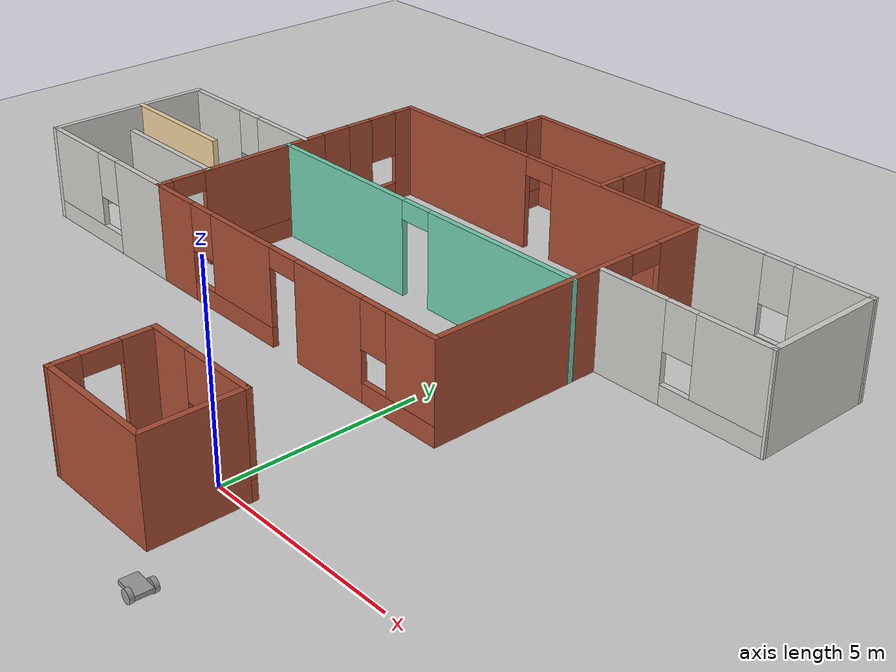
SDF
<sdf version="1.7">
 <world name="default">
  <plugin name="welcome_msg" filename="libwelcome.so"/>
  <light name="sun" type="directional">
   <pose>0 0 10 0 -0 0</pose>
   <diffuse>0.8 0.8 0.8 1</diffuse>
   <specular>0.2 0.2 0.2 1</specular>
   <attenuation>
    <range>1000</range>
    <constant>0.9</constant>
    <linear>0.01</linear>
    <quadratic>0.001</quadratic>
   </attenuation>
   <direction>-0.5 0.1 -0.9</direction>
   <spot><inner_angle>0</inner_angle><outer_angle>0</outer_angle><falloff>0</falloff></spot>
  </light>
  <model name="ground_plane">
   <static>1</static>
   <link name="link">
    <collision name="collision">
     <geometry><plane><normal>0 0 1</normal><size>100 100</size></plane></geometry>
     <surface>
      <contact><collide_bitmask>65535</collide_bitmask></contact>
      <friction><ode><mu>100</mu><mu2>50</mu2></ode></friction>
     </surface>
    </collision>
    <visual name="visual">
     <cast_shadows>0</cast_shadows>
     <geometry><plane><normal>0 0 1</normal><size>100 100</size></plane></geometry>
     <material>
      <script><uri>file://media/materials/scripts/gazebo.material</uri><name>Gazebo/Grey</name></script>
     </material>
    </visual>
   </link>
  </model>
  <gravity>0 0 -9.8</gravity>
  <magnetic_field>6e-06 2.3e-05 -4.2e-05</magnetic_field>
  <atmosphere type="adiabatic"/>
  <physics type="ode">
   <max_step_size>0.001</max_step_size>
   <real_time_factor>1</real_time_factor>
   <real_time_update_rate>1000</real_time_update_rate>
  </physics>
  <scene><ambient>0.4 0.4 0.4 1</ambient><background>0.7 0.7 0.7 1</background><shadows>1</shadows></scene>
  <spherical_coordinates>
   <surface_model>EARTH_WGS84</surface_model>
   <latitude_deg>0</latitude_deg>
   <longitude_deg>0</longitude_deg>
   <elevation>0</elevation>
   <heading_deg>0</heading_deg>
  </spherical_coordinates>
  <model name="test">
   <pose>-0.772529 -0.237938 0 0 -0 0</pose>
   <link name="Wall_1">
    <pose>0 0.4975 0 0 -0 0</pose>
    <visual name="Wall_1_Visual_0">
     <pose>-1.0175 0 1.25 0 -0 0</pose>
     <geometry><box><size>1.215 0.15 2.5</size></box></geometry>
     <material>
      <script><uri>file://media/materials/scripts/gazebo.material</uri><name>Gazebo/Bricks</name></script>
      <ambient>1 1 1 1</ambient>
     </material>
     <meta><layer>0</layer></meta>
    </visual>
    <collision name="Wall_1_Collision_0">
     <geometry><box><size>1.215 0.15 2.5</size></box></geometry>
     <pose>-1.0175 0 1.25 0 -0 0</pose>
    </collision>
    <visual name="Wall_1_Visual_1">
     <pose>0.6075 0 0.25 0 -0 0</pose>
     <geometry><box><size>2.035 0.15 0.5</size></box></geometry>
     <material>
      <script><uri>file://media/materials/scripts/gazebo.material</uri><name>Gazebo/Bricks</name></script>
      <ambient>1 1 1 1</ambient>
     </material>
     <meta><layer>0</layer></meta>
    </visual>
    <collision name="Wall_1_Collision_1">
     <geometry><box><size>2.035 0.15 0.5</size></box></geometry>
     <pose>0.6075 0 0.25 0 -0 0</pose>
    </collision>
    <visual name="Wall_1_Visual_2">
     <pose>1.0075 0 1.5 0 -0 0</pose>
     <geometry><box><size>1.235 0.15 2</size></box></geometry>
     <material>
      <script><uri>file://media/materials/scripts/gazebo.material</uri><name>Gazebo/Bricks</name></script>
      <ambient>1 1 1 1</ambient>
     </material>
     <meta><layer>0</layer></meta>
    </visual>
    <collision name="Wall_1_Collision_2">
     <geometry><box><size>1.235 0.15 2</size></box></geometry>
     <pose>1.0075 0 1.5 0 -0 0</pose>
    </collision>
    <visual name="Wall_1_Visual_3">
     <pose>-0.01 0 1.9 0 -0 0</pose>
     <geometry><box><size>0.8 0.15 1.2</size></box></geometry>
     <material>
      <script><uri>file://media/materials/scripts/gazebo.material</uri><name>Gazebo/Bricks</name></script>
      <ambient>1 1 1 1</ambient>
     </material>
     <meta><layer>0</layer></meta>
    </visual>
    <collision name="Wall_1_Collision_3">
     <geometry><box><size>0.8 0.15 1.2</size></box></geometry>
     <pose>-0.01 0 1.9 0 -0 0</pose>
    </collision>
   </link>
   <link name="Wall_3">
    <pose>-1.55 -0.6775 0 0 -0 -1.5708</pose>
    <visual name="Wall_3_Visual_0">
     <pose>-0.8125 0 1.25 0 -0 0</pose>
     <geometry><box><size>0.875 0.15 2.5</size></box></geometry>
     <material>
      <script><uri>file://media/materials/scripts/gazebo.material</uri><name>Gazebo/Bricks</name></script>
      <ambient>1 1 1 1</ambient>
     </material>
     <meta><layer>0</layer></meta>
    </visual>
    <collision name="Wall_3_Collision_0">
     <geometry><box><size>0.875 0.15 2.5</size></box></geometry>
     <pose>-0.8125 0 1.25 0 -0 0</pose>
    </collision>
    <visual name="Wall_3_Visual_1">
     <pose>0.8875 0 1.25 0 -0 0</pose>
     <geometry><box><size>0.725 0.15 2.5</size></box></geometry>
     <material>
      <script><uri>file://media/materials/scripts/gazebo.material</uri><name>Gazebo/Bricks</name></script>
      <ambient>1 1 1 1</ambient>
     </material>
     <meta><layer>0</layer></meta>
    </visual>
    <collision name="Wall_3_Collision_1">
     <geometry><box><size>0.725 0.15 2.5</size></box></geometry>
     <pose>0.8875 0 1.25 0 -0 0</pose>
    </collision>
    <visual name="Wall_3_Visual_2">
     <pose>0.075 0 2.25 0 -0 0</pose>
     <geometry><box><size>0.9 0.15 0.5</size></box></geometry>
     <material>
      <script><uri>file://media/materials/scripts/gazebo.material</uri><name>Gazebo/Bricks</name></script>
      <ambient>1 1 1 1</ambient>
     </material>
     <meta><layer>0</layer></meta>
    </visual>
    <collision name="Wall_3_Collision_2">
     <geometry><box><size>0.9 0.15 0.5</size></box></geometry>
     <pose>0.075 0 2.25 0 -0 0</pose>
    </collision>
   </link>
   <link name="Wall_4">
    <collision name="Wall_4_Collision">
     <geometry><box><size>3.25 0.15 2.5</size></box></geometry>
     <pose>0 0 1.25 0 -0 0</pose>
    </collision>
    <visual name="Wall_4_Visual">
     <pose>0 0 1.25 0 -0 0</pose>
     <geometry><box><size>3.25 0.15 2.5</size></box></geometry>
     <material>
      <script><uri>file://media/materials/scripts/gazebo.material</uri><name>Gazebo/Bricks</name></script>
      <ambient>1 1 1 1</ambient>
     </material>
     <meta><layer>0</layer></meta>
    </visual>
    <pose>0 -1.8525 0 0 -0 0</pose>
   </link>
   <link name="Wall_5">
    <collision name="Wall_5_Collision">
     <geometry><box><size>2.5 0.15 2.5</size></box></geometry>
     <pose>0 0 1.25 0 -0 0</pose>
    </collision>
    <visual name="Wall_5_Visual">
     <pose>0 0 1.25 0 -0 0</pose>
     <geometry><box><size>2.5 0.15 2.5</size></box></geometry>
     <material>
      <script><uri>file://media/materials/scripts/gazebo.material</uri><name>Gazebo/Bricks</name></script>
      <ambient>1 1 1 1</ambient>
     </material>
     <meta><layer>0</layer></meta>
    </visual>
    <pose>1.55 -0.6775 0 0 -0 1.5708</pose>
   </link>
   <static>1</static>
  </model>
  <model name="robot">
   <link name="body">
    <pose>0 0 0.15 0 -0 0</pose>
    <inertial>
     <mass>1</mass>
     <inertia>
      <ixx>0.166667</ixx>
      <ixy>0</ixy>
      <ixz>0</ixz>
      <iyy>0.166667</iyy>
      <iyz>0</iyz>
      <izz>0.166667</izz>
     </inertia>
    </inertial>
    <visual name="visual">
     <geometry><box><size>0.6 0.4 0.1</size></box></geometry>
     <material>
      <lighting>1</lighting>
      <script><uri>file://media/materials/scripts/gazebo.material</uri><name>Gazebo/Grey</name></script>
      <shader type="pixel"><normal_map>__default__</normal_map></shader>
      <ambient>0.3 0.3 0.3 1</ambient>
      <diffuse>0.7 0.7 0.7 1</diffuse>
      <specular>0.01 0.01 0.01 1</specular>
      <emissive>0 0 0 1</emissive>
     </material>
    </visual>
    <collision name="collision">
     <geometry><box><size>0.6 0.4 0.1</size></box></geometry>
     <surface>
      <friction>
       <ode><mu>1</mu><mu2>1</mu2><fdir1>0 0 0</fdir1><slip1>0</slip1><slip2>0</slip2></ode>
       <torsional>
        <coefficient>1</coefficient>
        <patch_radius>0</patch_radius>
        <surface_radius>0</surface_radius>
        <use_patch_radius>1</use_patch_radius>
        <ode><slip>0</slip></ode>
       </torsional>
      </friction>
      <bounce><restitution_coefficient>0</restitution_coefficient><threshold>1e+06</threshold></bounce>
      <contact>
       <collide_without_contact>0</collide_without_contact>
       <collide_without_contact_bitmask>1</collide_without_contact_bitmask>
       <collide_bitmask>1</collide_bitmask>
       <ode>
        <soft_cfm>0</soft_cfm>
        <soft_erp>0.2</soft_erp>
        <kp>1e+13</kp>
        <kd>1</kd>
        <max_vel>0.01</max_vel>
        <min_depth>0</min_depth>
       </ode>
       <bullet>
        <split_impulse>1</split_impulse>
        <split_impulse_penetration_threshold>-0.01</split_impulse_penetration_threshold>
        <soft_cfm>0</soft_cfm>
        <soft_erp>0.2</soft_erp>
        <kp>1e+13</kp>
        <kd>1</kd>
       </bullet>
      </contact>
     </surface>
    </collision>
   </link>
   <link name="left_wheel">
    <pose>0.15 -0.25 0.15 1.5707 -0 0</pose>
    <inertial>
     <mass>1</mass>
     <inertia><ixx>0.145833</ixx><ixy>0</ixy><ixz>0</ixz><iyy>0.145833</iyy><iyz>0</iyz><izz>0.125</izz></inertia>
    </inertial>
    <visual name="visual">
     <geometry><cylinder><radius>0.15</radius><length>0.1</length></cylinder></geometry>
     <material>
      <lighting>1</lighting>
      <script><uri>file://media/materials/scripts/gazebo.material</uri><name>Gazebo/Grey</name></script>
      <shader type="pixel"><normal_map>__default__</normal_map></shader>
      <ambient>0.3 0.3 0.3 1</ambient>
      <diffuse>0.7 0.7 0.7 1</diffuse>
      <specular>0.01 0.01 0.01 1</specular>
      <emissive>0 0 0 1</emissive>
     </material>
    </visual>
    <collision name="collision">
     <geometry><cylinder><radius>0.15</radius><length>0.1</length></cylinder></geometry>
     <surface>
      <friction>
       <ode><mu>1</mu><mu2>1</mu2><fdir1>0 0 0</fdir1><slip1>0</slip1><slip2>0</slip2></ode>
       <torsional>
        <coefficient>1</coefficient>
        <patch_radius>0</patch_radius>
        <surface_radius>0</surface_radius>
        <use_patch_radius>1</use_patch_radius>
        <ode><slip>0</slip></ode>
       </torsional>
      </friction>
      <bounce><restitution_coefficient>0</restitution_coefficient><threshold>1e+06</threshold></bounce>
      <contact>
       <collide_without_contact>0</collide_without_contact>
       <collide_without_contact_bitmask>1</collide_without_contact_bitmask>
       <collide_bitmask>1</collide_bitmask>
       <ode>
        <soft_cfm>0</soft_cfm>
        <soft_erp>0.2</soft_erp>
        <kp>1e+13</kp>
        <kd>1</kd>
        <max_vel>0.01</max_vel>
        <min_depth>0</min_depth>
       </ode>
       <bullet>
        <split_impulse>1</split_impulse>
        <split_impulse_penetration_threshold>-0.01</split_impulse_penetration_threshold>
        <soft_cfm>0</soft_cfm>
        <soft_erp>0.2</soft_erp>
        <kp>1e+13</kp>
        <kd>1</kd>
       </bullet>
      </contact>
     </surface>
    </collision>
   </link>
   <link name="right_wheel">
    <pose>0.15 0.25 0.15 1.5707 -0 0</pose>
    <inertial>
     <mass>1</mass>
     <inertia><ixx>0.145833</ixx><ixy>0</ixy><ixz>0</ixz><iyy>0.145833</iyy><iyz>0</iyz><izz>0.125</izz></inertia>
    </inertial>
    <visual name="visual">
     <geometry><cylinder><radius>0.15</radius><length>0.1</length></cylinder></geometry>
     <material>
      <lighting>1</lighting>
      <script><uri>file://media/materials/scripts/gazebo.material</uri><name>Gazebo/Grey</name></script>
      <shader type="pixel"><normal_map>__default__</normal_map></shader>
      <ambient>0.3 0.3 0.3 1</ambient>
      <diffuse>0.7 0.7 0.7 1</diffuse>
      <specular>0.01 0.01 0.01 1</specular>
      <emissive>0 0 0 1</emissive>
     </material>
    </visual>
    <collision name="collision">
     <geometry><cylinder><radius>0.15</radius><length>0.1</length></cylinder></geometry>
     <surface>
      <friction>
       <ode><mu>1</mu><mu2>1</mu2><fdir1>0 0 0</fdir1><slip1>0</slip1><slip2>0</slip2></ode>
       <torsional>
        <coefficient>1</coefficient>
        <patch_radius>0</patch_radius>
        <surface_radius>0</surface_radius>
        <use_patch_radius>1</use_patch_radius>
        <ode><slip>0</slip></ode>
       </torsional>
      </friction>
      <bounce><restitution_coefficient>0</restitution_coefficient><threshold>1e+06</threshold></bounce>
      <contact>
       <collide_without_contact>0</collide_without_contact>
       <collide_without_contact_bitmask>1</collide_without_contact_bitmask>
       <collide_bitmask>1</collide_bitmask>
       <ode>
        <soft_cfm>0</soft_cfm>
        <soft_erp>0.2</soft_erp>
        <kp>1e+13</kp>
        <kd>1</kd>
        <max_vel>0.01</max_vel>
        <min_depth>0</min_depth>
       </ode>
       <bullet>
        <split_impulse>1</split_impulse>
        <split_impulse_penetration_threshold>-0.01</split_impulse_penetration_threshold>
        <soft_cfm>0</soft_cfm>
        <soft_erp>0.2</soft_erp>
        <kp>1e+13</kp>
        <kd>1</kd>
       </bullet>
      </contact>
     </surface>
    </collision>
   </link>
   <link name="caster_wheel">
    <pose>-0.25 0 0.08 0 -0 0</pose>
    <inertial>
     <mass>1</mass>
     <inertia><ixx>0.1</ixx><ixy>0</ixy><ixz>0</ixz><iyy>0.1</iyy><iyz>0</iyz><izz>0.1</izz></inertia>
    </inertial>
    <visual name="visual">
     <geometry><sphere><radius>0.08</radius></sphere></geometry>
     <material>
      <lighting>1</lighting>
      <script><uri>file://media/materials/scripts/gazebo.material</uri><name>Gazebo/Grey</name></script>
      <shader type="pixel"><normal_map>__default__</normal_map></shader>
      <ambient>0.3 0.3 0.3 1</ambient>
      <diffuse>0.7 0.7 0.7 1</diffuse>
      <specular>0.01 0.01 0.01 1</specular>
      <emissive>0 0 0 1</emissive>
     </material>
    </visual>
    <collision name="collision">
     <geometry><sphere><radius>0.08</radius></sphere></geometry>
     <surface>
      <friction>
       <ode><mu>1</mu><mu2>1</mu2><fdir1>0 0 0</fdir1><slip1>0</slip1><slip2>0</slip2></ode>
       <torsional>
        <coefficient>1</coefficient>
        <patch_radius>0</patch_radius>
        <surface_radius>0</surface_radius>
        <use_patch_radius>1</use_patch_radius>
        <ode><slip>0</slip></ode>
       </torsional>
      </friction>
      <bounce><restitution_coefficient>0</restitution_coefficient><threshold>1e+06</threshold></bounce>
      <contact>
       <collide_without_contact>0</collide_without_contact>
       <collide_without_contact_bitmask>1</collide_without_contact_bitmask>
       <collide_bitmask>1</collide_bitmask>
       <ode>
        <soft_cfm>0</soft_cfm>
        <soft_erp>0.2</soft_erp>
        <kp>1e+13</kp>
        <kd>1</kd>
        <max_vel>0.01</max_vel>
        <min_depth>0</min_depth>
       </ode>
       <bullet>
        <split_impulse>1</split_impulse>
        <split_impulse_penetration_threshold>-0.01</split_impulse_penetration_threshold>
        <soft_cfm>0</soft_cfm>
        <soft_erp>0.2</soft_erp>
        <kp>1e+13</kp>
        <kd>1</kd>
       </bullet>
      </contact>
     </surface>
    </collision>
   </link>
   <joint name="BODY_RW_JOINT" type="revolute">
    <parent>body</parent>
    <child>right_wheel</child>
    <axis>
     <xyz>1 0 0</xyz>
     <limit>
      <lower>-1.79769e+308</lower>
      <upper>1.79769e+308</upper>
      <effort>-1</effort>
      <velocity>-1</velocity>
     </limit>
     <dynamics>
      <spring_reference>0</spring_reference>
      <spring_stiffness>0</spring_stiffness>
      <damping>0</damping>
     </dynamics>
    </axis>
    <physics>
     <ode><limit><cfm>0</cfm><erp>0.2</erp></limit><suspension><cfm>0</cfm><erp>0.2</erp></suspension></ode>
    </physics>
   </joint>
   <joint name="BODY_LW_JOINT" type="revolute">
    <parent>body</parent>
    <child>left_wheel</child>
    <axis>
     <xyz>1 0 0</xyz>
     <limit>
      <lower>-1.79769e+308</lower>
      <upper>1.79769e+308</upper>
      <effort>-1</effort>
      <velocity>-1</velocity>
     </limit>
     <dynamics>
      <spring_reference>0</spring_reference>
      <spring_stiffness>0</spring_stiffness>
      <damping>0</damping>
     </dynamics>
    </axis>
    <physics>
     <ode><limit><cfm>0</cfm><erp>0.2</erp></limit><suspension><cfm>0</cfm><erp>0.2</erp></suspension></ode>
    </physics>
   </joint>
   <joint name="BODY_CW_JOINT" type="ball">
    <parent>body</parent>
    <child>caster_wheel</child>
    <physics>
     <ode><limit><cfm>0</cfm><erp>0.2</erp></limit><suspension><cfm>0</cfm><erp>0.2</erp></suspension></ode>
    </physics>
   </joint>
   <static>0</static>
   <pose>1.7483 -2.92244 -2e-06 -8e-06 -2e-06 -0.04591</pose>
  </model>
  <model name="building">
   <pose>-3.40835 9.10684 0 0 -0 0</pose>
   <link name="Wall_0">
    <pose>0.129847 -4.99566 0 0 -0 0</pose>
    <visual name="Wall_0_Visual_0">
     <pose>-4.24823 0 1.25 0 -0 0</pose>
     <geometry><box><size>1.50354 0.15 2.5</size></box></geometry>
     <material>
      <script><uri>file://media/materials/scripts/gazebo.material</uri><name>Gazebo/Bricks</name></script>
      <ambient>1 1 1 1</ambient>
     </material>
     <meta><layer>0</layer></meta>
    </visual>
    <collision name="Wall_0_Collision_0">
     <geometry><box><size>1.50354 0.15 2.5</size></box></geometry>
     <pose>-4.24823 0 1.25 0 -0 0</pose>
    </collision>
    <visual name="Wall_0_Visual_1">
     <pose>1.5728 0 1.25 0 -0 0</pose>
     <geometry><box><size>2.24445 0.15 2.5</size></box></geometry>
     <material>
      <script><uri>file://media/materials/scripts/gazebo.material</uri><name>Gazebo/Bricks</name></script>
      <ambient>1 1 1 1</ambient>
     </material>
     <meta><layer>0</layer></meta>
    </visual>
    <collision name="Wall_0_Collision_1">
     <geometry><box><size>2.24445 0.15 2.5</size></box></geometry>
     <pose>1.5728 0 1.25 0 -0 0</pose>
    </collision>
    <visual name="Wall_0_Visual_2">
     <pose>-1.97294 0 0.25 0 -0 0</pose>
     <geometry><box><size>3.04703 0.15 0.5</size></box></geometry>
     <material>
      <script><uri>file://media/materials/scripts/gazebo.material</uri><name>Gazebo/Bricks</name></script>
      <ambient>1 1 1 1</ambient>
     </material>
     <meta><layer>0</layer></meta>
    </visual>
    <collision name="Wall_0_Collision_2">
     <geometry><box><size>3.04703 0.15 0.5</size></box></geometry>
     <pose>-1.97294 0 0.25 0 -0 0</pose>
    </collision>
    <visual name="Wall_0_Visual_3">
     <pose>3.84751 0 0.25 0 -0 0</pose>
     <geometry><box><size>2.30497 0.15 0.5</size></box></geometry>
     <material>
      <script><uri>file://media/materials/scripts/gazebo.material</uri><name>Gazebo/Bricks</name></script>
      <ambient>1 1 1 1</ambient>
     </material>
     <meta><layer>0</layer></meta>
    </visual>
    <collision name="Wall_0_Collision_3">
     <geometry><box><size>2.30497 0.15 0.5</size></box></geometry>
     <pose>3.84751 0 0.25 0 -0 0</pose>
    </collision>
    <visual name="Wall_0_Visual_4">
     <pose>-1.57294 0 1.5 0 -0 0</pose>
     <geometry><box><size>2.24703 0.15 2</size></box></geometry>
     <material>
      <script><uri>file://media/materials/scripts/gazebo.material</uri><name>Gazebo/Bricks</name></script>
      <ambient>1 1 1 1</ambient>
     </material>
     <meta><layer>0</layer></meta>
    </visual>
    <collision name="Wall_0_Collision_4">
     <geometry><box><size>2.24703 0.15 2</size></box></geometry>
     <pose>-1.57294 0 1.5 0 -0 0</pose>
    </collision>
    <visual name="Wall_0_Visual_5">
     <pose>-1.57294 0 1.5 0 -0 0</pose>
     <geometry><box><size>2.24703 0.15 2</size></box></geometry>
     <material>
      <script><uri>file://media/materials/scripts/gazebo.material</uri><name>Gazebo/Bricks</name></script>
      <ambient>1 1 1 1</ambient>
     </material>
     <meta><layer>0</layer></meta>
    </visual>
    <collision name="Wall_0_Collision_5">
     <geometry><box><size>2.24703 0.15 2</size></box></geometry>
     <pose>-1.57294 0 1.5 0 -0 0</pose>
    </collision>
    <visual name="Wall_0_Visual_6">
     <pose>4.24751 0 1.5 0 -0 0</pose>
     <geometry><box><size>1.50497 0.15 2</size></box></geometry>
     <material>
      <script><uri>file://media/materials/scripts/gazebo.material</uri><name>Gazebo/Bricks</name></script>
      <ambient>1 1 1 1</ambient>
     </material>
     <meta><layer>0</layer></meta>
    </visual>
    <collision name="Wall_0_Collision_6">
     <geometry><box><size>1.50497 0.15 2</size></box></geometry>
     <pose>4.24751 0 1.5 0 -0 0</pose>
    </collision>
    <visual name="Wall_0_Visual_7">
     <pose>-3.09646 0 1.9 0 -0 0</pose>
     <geometry><box><size>0.8 0.15 1.2</size></box></geometry>
     <material>
      <script><uri>file://media/materials/scripts/gazebo.material</uri><name>Gazebo/Bricks</name></script>
      <ambient>1 1 1 1</ambient>
     </material>
     <meta><layer>0</layer></meta>
    </visual>
    <collision name="Wall_0_Collision_7">
     <geometry><box><size>0.8 0.15 1.2</size></box></geometry>
     <pose>-3.09646 0 1.9 0 -0 0</pose>
    </collision>
    <visual name="Wall_0_Visual_8">
     <pose>3.09503 0 1.9 0 -0 0</pose>
     <geometry><box><size>0.8 0.15 1.2</size></box></geometry>
     <material>
      <script><uri>file://media/materials/scripts/gazebo.material</uri><name>Gazebo/Bricks</name></script>
      <ambient>1 1 1 1</ambient>
     </material>
     <meta><layer>0</layer></meta>
    </visual>
    <collision name="Wall_0_Collision_8">
     <geometry><box><size>0.8 0.15 1.2</size></box></geometry>
     <pose>3.09503 0 1.9 0 -0 0</pose>
    </collision>
    <visual name="Wall_0_Visual_9">
     <pose>0.000575 0 2.25 0 -0 0</pose>
     <geometry><box><size>0.9 0.15 0.5</size></box></geometry>
     <material>
      <script><uri>file://media/materials/scripts/gazebo.material</uri><name>Gazebo/Bricks</name></script>
      <ambient>1 1 1 1</ambient>
     </material>
     <meta><layer>0</layer></meta>
    </visual>
    <collision name="Wall_0_Collision_9">
     <geometry><box><size>0.9 0.15 0.5</size></box></geometry>
     <pose>0.000575 0 2.25 0 -0 0</pose>
    </collision>
    <visual name="Wall_0_Visual_10">
     <pose>0.000575 0 2.25 0 -0 0</pose>
     <geometry><box><size>0.9 0.15 0.5</size></box></geometry>
     <material>
      <script><uri>file://media/materials/scripts/gazebo.material</uri><name>Gazebo/Bricks</name></script>
      <ambient>1 1 1 1</ambient>
     </material>
     <meta><layer>0</layer></meta>
    </visual>
    <collision name="Wall_0_Collision_10">
     <geometry><box><size>0.9 0.15 0.5</size></box></geometry>
     <pose>0.000575 0 2.25 0 -0 0</pose>
    </collision>
   </link>
   <link name="Wall_1">
    <pose>5.05485 -1.07066 0 0 -0 1.5708</pose>
    <visual name="Wall_1_Visual_0">
     <pose>-1.14884 0 1.25 0 -0 0</pose>
     <geometry><box><size>5.70231 0.15 2.5</size></box></geometry>
     <material>
      <script><uri>file://media/materials/scripts/gazebo.material</uri><name>Gazebo/Bricks</name></script>
      <ambient>1 1 1 1</ambient>
     </material>
     <meta><layer>0</layer></meta>
    </visual>
    <collision name="Wall_1_Collision_0">
     <geometry><box><size>5.70231 0.15 2.5</size></box></geometry>
     <pose>-1.14884 0 1.25 0 -0 0</pose>
    </collision>
    <visual name="Wall_1_Visual_1">
     <pose>3.30116 0 1.25 0 -0 0</pose>
     <geometry><box><size>1.39769 0.15 2.5</size></box></geometry>
     <material>
      <script><uri>file://media/materials/scripts/gazebo.material</uri><name>Gazebo/Bricks</name></script>
      <ambient>1 1 1 1</ambient>
     </material>
     <meta><layer>0</layer></meta>
    </visual>
    <collision name="Wall_1_Collision_1">
     <geometry><box><size>1.39769 0.15 2.5</size></box></geometry>
     <pose>3.30116 0 1.25 0 -0 0</pose>
    </collision>
    <visual name="Wall_1_Visual_2">
     <pose>2.15231 0 2.25 0 -0 0</pose>
     <geometry><box><size>0.9 0.15 0.5</size></box></geometry>
     <material>
      <script><uri>file://media/materials/scripts/gazebo.material</uri><name>Gazebo/Bricks</name></script>
      <ambient>1 1 1 1</ambient>
     </material>
     <meta><layer>0</layer></meta>
    </visual>
    <collision name="Wall_1_Collision_2">
     <geometry><box><size>0.9 0.15 0.5</size></box></geometry>
     <pose>2.15231 0 2.25 0 -0 0</pose>
    </collision>
   </link>
   <link name="Wall_10">
    <collision name="Wall_10_Collision">
     <geometry><box><size>3.5 0.15 2.5</size></box></geometry>
     <pose>0 0 1.25 0 -0 0</pose>
    </collision>
    <visual name="Wall_10_Visual">
     <pose>0 0 1.25 0 -0 0</pose>
     <geometry><box><size>3.5 0.15 2.5</size></box></geometry>
     <material>
      <script><uri>file://media/materials/scripts/gazebo.material</uri><name>Gazebo/Grey</name></script>
      <ambient>0.921569 0.807843 0.615686 1</ambient>
     </material>
     <meta><layer>0</layer></meta>
    </visual>
    <pose>-7.97989 -2.43004 0 0 -0 0</pose>
   </link>
   <link name="Wall_12">
    <pose>0.133065 -1.17007 0 0 -0 0</pose>
    <visual name="Wall_12_Visual_0">
     <pose>-2.73364 0 1.25 0 -0 0</pose>
     <geometry><box><size>4.53271 0.15 2.5</size></box></geometry>
     <material>
      <script><uri>file://media/materials/scripts/gazebo.material</uri><name>Gazebo/Grey</name></script>
      <ambient>0.435294 0.796078 0.67451 1</ambient>
     </material>
     <meta><layer>0</layer></meta>
    </visual>
    <collision name="Wall_12_Collision_0">
     <geometry><box><size>4.53271 0.15 2.5</size></box></geometry>
     <pose>-2.73364 0 1.25 0 -0 0</pose>
    </collision>
    <visual name="Wall_12_Visual_1">
     <pose>2.71636 0 1.25 0 -0 0</pose>
     <geometry><box><size>4.56729 0.15 2.5</size></box></geometry>
     <material>
      <script><uri>file://media/materials/scripts/gazebo.material</uri><name>Gazebo/Grey</name></script>
      <ambient>0.435294 0.796078 0.67451 1</ambient>
     </material>
     <meta><layer>0</layer></meta>
    </visual>
    <collision name="Wall_12_Collision_1">
     <geometry><box><size>4.56729 0.15 2.5</size></box></geometry>
     <pose>2.71636 0 1.25 0 -0 0</pose>
    </collision>
    <visual name="Wall_12_Visual_2">
     <pose>-0.017288 0 2.25 0 -0 0</pose>
     <geometry><box><size>0.9 0.15 0.5</size></box></geometry>
     <material>
      <script><uri>file://media/materials/scripts/gazebo.material</uri><name>Gazebo/Grey</name></script>
      <ambient>0.435294 0.796078 0.67451 1</ambient>
     </material>
     <meta><layer>0</layer></meta>
    </visual>
    <collision name="Wall_12_Collision_2">
     <geometry><box><size>0.9 0.15 0.5</size></box></geometry>
     <pose>-0.017288 0 2.25 0 -0 0</pose>
    </collision>
   </link>
   <link name="Wall_14">
    <pose>-2.00976 3.94566 0 0 -0 1.5708</pose>
    <visual name="Wall_14_Visual_0">
     <pose>-0.743931 0 1.25 0 -0 0</pose>
     <geometry><box><size>0.762138 0.15 2.5</size></box></geometry>
     <material>
      <script><uri>file://media/materials/scripts/gazebo.material</uri><name>Gazebo/Bricks</name></script>
      <ambient>1 1 1 1</ambient>
     </material>
     <meta><layer>0</layer></meta>
    </visual>
    <collision name="Wall_14_Collision_0">
     <geometry><box><size>0.762138 0.15 2.5</size></box></geometry>
     <pose>-0.743931 0 1.25 0 -0 0</pose>
    </collision>
    <visual name="Wall_14_Visual_1">
     <pose>0.381069 0 0.25 0 -0 0</pose>
     <geometry><box><size>1.48786 0.15 0.5</size></box></geometry>
     <material>
      <script><uri>file://media/materials/scripts/gazebo.material</uri><name>Gazebo/Bricks</name></script>
      <ambient>1 1 1 1</ambient>
     </material>
     <meta><layer>0</layer></meta>
    </visual>
    <collision name="Wall_14_Collision_1">
     <geometry><box><size>1.48786 0.15 0.5</size></box></geometry>
     <pose>0.381069 0 0.25 0 -0 0</pose>
    </collision>
    <visual name="Wall_14_Visual_2">
     <pose>0.781069 0 1.5 0 -0 0</pose>
     <geometry><box><size>0.687862 0.15 2</size></box></geometry>
     <material>
      <script><uri>file://media/materials/scripts/gazebo.material</uri><name>Gazebo/Bricks</name></script>
      <ambient>1 1 1 1</ambient>
     </material>
     <meta><layer>0</layer></meta>
    </visual>
    <collision name="Wall_14_Collision_2">
     <geometry><box><size>0.687862 0.15 2</size></box></geometry>
     <pose>0.781069 0 1.5 0 -0 0</pose>
    </collision>
    <visual name="Wall_14_Visual_3">
     <pose>0.037138 0 1.9 0 -0 0</pose>
     <geometry><box><size>0.8 0.15 1.2</size></box></geometry>
     <material>
      <script><uri>file://media/materials/scripts/gazebo.material</uri><name>Gazebo/Bricks</name></script>
      <ambient>1 1 1 1</ambient>
     </material>
     <meta><layer>0</layer></meta>
    </visual>
    <collision name="Wall_14_Collision_3">
     <geometry><box><size>0.8 0.15 1.2</size></box></geometry>
     <pose>0.037138 0 1.9 0 -0 0</pose>
    </collision>
   </link>
   <link name="Wall_15">
    <collision name="Wall_15_Collision">
     <geometry><box><size>4.25 0.15 2.5</size></box></geometry>
     <pose>0 0 1.25 0 -0 0</pose>
    </collision>
    <visual name="Wall_15_Visual">
     <pose>0 0 1.25 0 -0 0</pose>
     <geometry><box><size>4.25 0.15 2.5</size></box></geometry>
     <material>
      <script><uri>file://media/materials/scripts/gazebo.material</uri><name>Gazebo/Bricks</name></script>
      <ambient>1 1 1 1</ambient>
     </material>
     <meta><layer>0</layer></meta>
    </visual>
    <pose>0.040235 4.99566 0 0 -0 0</pose>
   </link>
   <link name="Wall_16">
    <pose>2.09023 3.94566 0 0 0 -1.5708</pose>
    <visual name="Wall_16_Visual_0">
     <pose>-0.781069 0 1.25 0 -0 0</pose>
     <geometry><box><size>0.687862 0.15 2.5</size></box></geometry>
     <material>
      <script><uri>file://media/materials/scripts/gazebo.material</uri><name>Gazebo/Bricks</name></script>
      <ambient>1 1 1 1</ambient>
     </material>
     <meta><layer>0</layer></meta>
    </visual>
    <collision name="Wall_16_Collision_0">
     <geometry><box><size>0.687862 0.15 2.5</size></box></geometry>
     <pose>-0.781069 0 1.25 0 -0 0</pose>
    </collision>
    <visual name="Wall_16_Visual_1">
     <pose>0.343931 0 0.25 0 -0 0</pose>
     <geometry><box><size>1.56214 0.15 0.5</size></box></geometry>
     <material>
      <script><uri>file://media/materials/scripts/gazebo.material</uri><name>Gazebo/Bricks</name></script>
      <ambient>1 1 1 1</ambient>
     </material>
     <meta><layer>0</layer></meta>
    </visual>
    <collision name="Wall_16_Collision_1">
     <geometry><box><size>1.56214 0.15 0.5</size></box></geometry>
     <pose>0.343931 0 0.25 0 -0 0</pose>
    </collision>
    <visual name="Wall_16_Visual_2">
     <pose>0.743931 0 1.5 0 -0 0</pose>
     <geometry><box><size>0.762138 0.15 2</size></box></geometry>
     <material>
      <script><uri>file://media/materials/scripts/gazebo.material</uri><name>Gazebo/Bricks</name></script>
      <ambient>1 1 1 1</ambient>
     </material>
     <meta><layer>0</layer></meta>
    </visual>
    <collision name="Wall_16_Collision_2">
     <geometry><box><size>0.762138 0.15 2</size></box></geometry>
     <pose>0.743931 0 1.5 0 -0 0</pose>
    </collision>
    <visual name="Wall_16_Visual_3">
     <pose>-0.037138 0 1.9 0 -0 0</pose>
     <geometry><box><size>0.8 0.15 1.2</size></box></geometry>
     <material>
      <script><uri>file://media/materials/scripts/gazebo.material</uri><name>Gazebo/Bricks</name></script>
      <ambient>1 1 1 1</ambient>
     </material>
     <meta><layer>0</layer></meta>
    </visual>
    <collision name="Wall_16_Collision_3">
     <geometry><box><size>0.8 0.15 1.2</size></box></geometry>
     <pose>-0.037138 0 1.9 0 -0 0</pose>
    </collision>
   </link>
   <link name="Wall_2">
    <pose>0.129847 2.85433 0 0 -0 3.14159</pose>
    <visual name="Wall_2_Visual_0">
     <pose>-2.7192 0 1.25 0 -0 0</pose>
     <geometry><box><size>4.5616 0.15 2.5</size></box></geometry>
     <material>
      <script><uri>file://media/materials/scripts/gazebo.material</uri><name>Gazebo/Bricks</name></script>
      <ambient>1 1 1 1</ambient>
     </material>
     <meta><layer>0</layer></meta>
    </visual>
    <collision name="Wall_2_Collision_0">
     <geometry><box><size>4.5616 0.15 2.5</size></box></geometry>
     <pose>-2.7192 0 1.25 0 -0 0</pose>
    </collision>
    <visual name="Wall_2_Visual_1">
     <pose>2.7308 0 1.25 0 -0 0</pose>
     <geometry><box><size>4.5384 0.15 2.5</size></box></geometry>
     <material>
      <script><uri>file://media/materials/scripts/gazebo.material</uri><name>Gazebo/Bricks</name></script>
      <ambient>1 1 1 1</ambient>
     </material>
     <meta><layer>0</layer></meta>
    </visual>
    <collision name="Wall_2_Collision_1">
     <geometry><box><size>4.5384 0.15 2.5</size></box></geometry>
     <pose>2.7308 0 1.25 0 -0 0</pose>
    </collision>
    <visual name="Wall_2_Visual_2">
     <pose>0.011596 0 2.25 0 -0 0</pose>
     <geometry><box><size>0.9 0.15 0.5</size></box></geometry>
     <material>
      <script><uri>file://media/materials/scripts/gazebo.material</uri><name>Gazebo/Bricks</name></script>
      <ambient>1 1 1 1</ambient>
     </material>
     <meta><layer>0</layer></meta>
    </visual>
    <collision name="Wall_2_Collision_2">
     <geometry><box><size>0.9 0.15 0.5</size></box></geometry>
     <pose>0.011596 0 2.25 0 -0 0</pose>
    </collision>
   </link>
   <link name="Wall_23">
    <pose>7.35485 2.85433 0 0 -0 0</pose>
    <visual name="Wall_23_Visual_0">
     <pose>-1.39772 0 1.25 0 -0 0</pose>
     <geometry><box><size>1.95457 0.15 2.5</size></box></geometry>
     <material>
      <script><uri>file://media/materials/scripts/gazebo.material</uri><name>Gazebo/CeilingTiled</name></script>
      <ambient>0.760784 0.662745 0.627451 1</ambient>
     </material>
     <meta><layer>0</layer></meta>
    </visual>
    <collision name="Wall_23_Collision_0">
     <geometry><box><size>1.95457 0.15 2.5</size></box></geometry>
     <pose>-1.39772 0 1.25 0 -0 0</pose>
    </collision>
    <visual name="Wall_23_Visual_1">
     <pose>0.977283 0 0.25 0 -0 0</pose>
     <geometry><box><size>2.79543 0.15 0.5</size></box></geometry>
     <material>
      <script><uri>file://media/materials/scripts/gazebo.material</uri><name>Gazebo/CeilingTiled</name></script>
      <ambient>0.760784 0.662745 0.627451 1</ambient>
     </material>
     <meta><layer>0</layer></meta>
    </visual>
    <collision name="Wall_23_Collision_1">
     <geometry><box><size>2.79543 0.15 0.5</size></box></geometry>
     <pose>0.977283 0 0.25 0 -0 0</pose>
    </collision>
    <visual name="Wall_23_Visual_2">
     <pose>1.37728 0 1.5 0 -0 0</pose>
     <geometry><box><size>1.99543 0.15 2</size></box></geometry>
     <material>
      <script><uri>file://media/materials/scripts/gazebo.material</uri><name>Gazebo/CeilingTiled</name></script>
      <ambient>0.760784 0.662745 0.627451 1</ambient>
     </material>
     <meta><layer>0</layer></meta>
    </visual>
    <collision name="Wall_23_Collision_2">
     <geometry><box><size>1.99543 0.15 2</size></box></geometry>
     <pose>1.37728 0 1.5 0 -0 0</pose>
    </collision>
    <visual name="Wall_23_Visual_3">
     <pose>-0.020434 0 1.9 0 -0 0</pose>
     <geometry><box><size>0.8 0.15 1.2</size></box></geometry>
     <material>
      <script><uri>file://media/materials/scripts/gazebo.material</uri><name>Gazebo/CeilingTiled</name></script>
      <ambient>0.760784 0.662745 0.627451 1</ambient>
     </material>
     <meta><layer>0</layer></meta>
    </visual>
    <collision name="Wall_23_Collision_3">
     <geometry><box><size>0.8 0.15 1.2</size></box></geometry>
     <pose>-0.020434 0 1.9 0 -0 0</pose>
    </collision>
   </link>
   <link name="Wall_3">
    <pose>-4.79515 -1.07066 0 0 0 -1.5708</pose>
    <visual name="Wall_3_Visual_0">
     <pose>-3.66273 0 1.25 0 -0 0</pose>
     <geometry><box><size>0.674547 0.15 2.5</size></box></geometry>
     <material>
      <script><uri>file://media/materials/scripts/gazebo.material</uri><name>Gazebo/Bricks</name></script>
      <ambient>1 1 1 1</ambient>
     </material>
     <meta><layer>0</layer></meta>
    </visual>
    <collision name="Wall_3_Collision_0">
     <geometry><box><size>0.674547 0.15 2.5</size></box></geometry>
     <pose>-3.66273 0 1.25 0 -0 0</pose>
    </collision>
    <visual name="Wall_3_Visual_1">
     <pose>3.78969 0 1.25 0 -0 0</pose>
     <geometry><box><size>0.420627 0.15 2.5</size></box></geometry>
     <material>
      <script><uri>file://media/materials/scripts/gazebo.material</uri><name>Gazebo/Bricks</name></script>
      <ambient>1 1 1 1</ambient>
     </material>
     <meta><layer>0</layer></meta>
    </visual>
    <collision name="Wall_3_Collision_1">
     <geometry><box><size>0.420627 0.15 2.5</size></box></geometry>
     <pose>3.78969 0 1.25 0 -0 0</pose>
    </collision>
    <visual name="Wall_3_Visual_2">
     <pose>-0.32304 0 0.25 0 -0 0</pose>
     <geometry><box><size>6.00483 0.15 0.5</size></box></geometry>
     <material>
      <script><uri>file://media/materials/scripts/gazebo.material</uri><name>Gazebo/Bricks</name></script>
      <ambient>1 1 1 1</ambient>
     </material>
     <meta><layer>0</layer></meta>
    </visual>
    <collision name="Wall_3_Collision_2">
     <geometry><box><size>6.00483 0.15 0.5</size></box></geometry>
     <pose>-0.32304 0 0.25 0 -0 0</pose>
    </collision>
    <visual name="Wall_3_Visual_3">
     <pose>-2.15058 0 1.5 0 -0 0</pose>
     <geometry><box><size>0.749751 0.15 2</size></box></geometry>
     <material>
      <script><uri>file://media/materials/scripts/gazebo.material</uri><name>Gazebo/Bricks</name></script>
      <ambient>1 1 1 1</ambient>
     </material>
     <meta><layer>0</layer></meta>
    </visual>
    <collision name="Wall_3_Collision_3">
     <geometry><box><size>0.749751 0.15 2</size></box></geometry>
     <pose>-2.15058 0 1.5 0 -0 0</pose>
    </collision>
    <visual name="Wall_3_Visual_4">
     <pose>0.851835 0 1.5 0 -0 0</pose>
     <geometry><box><size>3.65508 0.15 2</size></box></geometry>
     <material>
      <script><uri>file://media/materials/scripts/gazebo.material</uri><name>Gazebo/Bricks</name></script>
      <ambient>1 1 1 1</ambient>
     </material>
     <meta><layer>0</layer></meta>
    </visual>
    <collision name="Wall_3_Collision_4">
     <geometry><box><size>3.65508 0.15 2</size></box></geometry>
     <pose>0.851835 0 1.5 0 -0 0</pose>
    </collision>
    <visual name="Wall_3_Visual_5">
     <pose>-2.92545 0 1.9 0 -0 0</pose>
     <geometry><box><size>0.8 0.15 1.2</size></box></geometry>
     <material>
      <script><uri>file://media/materials/scripts/gazebo.material</uri><name>Gazebo/Bricks</name></script>
      <ambient>1 1 1 1</ambient>
     </material>
     <meta><layer>0</layer></meta>
    </visual>
    <collision name="Wall_3_Collision_5">
     <geometry><box><size>0.8 0.15 1.2</size></box></geometry>
     <pose>-2.92545 0 1.9 0 -0 0</pose>
    </collision>
    <visual name="Wall_3_Visual_6">
     <pose>-1.3757 0 1.9 0 -0 0</pose>
     <geometry><box><size>0.8 0.15 1.2</size></box></geometry>
     <material>
      <script><uri>file://media/materials/scripts/gazebo.material</uri><name>Gazebo/Bricks</name></script>
      <ambient>1 1 1 1</ambient>
     </material>
     <meta><layer>0</layer></meta>
    </visual>
    <collision name="Wall_3_Collision_6">
     <geometry><box><size>0.8 0.15 1.2</size></box></geometry>
     <pose>-1.3757 0 1.9 0 -0 0</pose>
    </collision>
    <visual name="Wall_3_Visual_7">
     <pose>3.12937 0 2.25 0 -0 0</pose>
     <geometry><box><size>0.9 0.15 0.5</size></box></geometry>
     <material>
      <script><uri>file://media/materials/scripts/gazebo.material</uri><name>Gazebo/Bricks</name></script>
      <ambient>1 1 1 1</ambient>
     </material>
     <meta><layer>0</layer></meta>
    </visual>
    <collision name="Wall_3_Collision_7">
     <geometry><box><size>0.9 0.15 0.5</size></box></geometry>
     <pose>3.12937 0 2.25 0 -0 0</pose>
    </collision>
   </link>
   <link name="Wall_32">
    <pose>7.3531 -0.347976 0 0 -0 0</pose>
    <visual name="Wall_32_Visual_0">
     <pose>-1.38163 0 1.25 0 -0 0</pose>
     <geometry><box><size>1.98673 0.15 2.5</size></box></geometry>
     <material>
      <script><uri>file://media/materials/scripts/gazebo.material</uri><name>Gazebo/CeilingTiled</name></script>
      <ambient>0.760784 0.662745 0.627451 1</ambient>
     </material>
     <meta><layer>0</layer></meta>
    </visual>
    <collision name="Wall_32_Collision_0">
     <geometry><box><size>1.98673 0.15 2.5</size></box></geometry>
     <pose>-1.38163 0 1.25 0 -0 0</pose>
    </collision>
    <visual name="Wall_32_Visual_1">
     <pose>0.993365 0 0.25 0 -0 0</pose>
     <geometry><box><size>2.76327 0.15 0.5</size></box></geometry>
     <material>
      <script><uri>file://media/materials/scripts/gazebo.material</uri><name>Gazebo/CeilingTiled</name></script>
      <ambient>0.760784 0.662745 0.627451 1</ambient>
     </material>
     <meta><layer>0</layer></meta>
    </visual>
    <collision name="Wall_32_Collision_1">
     <geometry><box><size>2.76327 0.15 0.5</size></box></geometry>
     <pose>0.993365 0 0.25 0 -0 0</pose>
    </collision>
    <visual name="Wall_32_Visual_2">
     <pose>1.39336 0 1.5 0 -0 0</pose>
     <geometry><box><size>1.96327 0.15 2</size></box></geometry>
     <material>
      <script><uri>file://media/materials/scripts/gazebo.material</uri><name>Gazebo/CeilingTiled</name></script>
      <ambient>0.760784 0.662745 0.627451 1</ambient>
     </material>
     <meta><layer>0</layer></meta>
    </visual>
    <collision name="Wall_32_Collision_2">
     <geometry><box><size>1.96327 0.15 2</size></box></geometry>
     <pose>1.39336 0 1.5 0 -0 0</pose>
    </collision>
    <visual name="Wall_32_Visual_3">
     <pose>0.01173 0 1.9 0 -0 0</pose>
     <geometry><box><size>0.8 0.15 1.2</size></box></geometry>
     <material>
      <script><uri>file://media/materials/scripts/gazebo.material</uri><name>Gazebo/CeilingTiled</name></script>
      <ambient>0.760784 0.662745 0.627451 1</ambient>
     </material>
     <meta><layer>0</layer></meta>
    </visual>
    <collision name="Wall_32_Collision_3">
     <geometry><box><size>0.8 0.15 1.2</size></box></geometry>
     <pose>0.01173 0 1.9 0 -0 0</pose>
    </collision>
   </link>
   <link name="Wall_33">
    <collision name="Wall_33_Collision">
     <geometry><box><size>3.35231 0.15 2.5</size></box></geometry>
     <pose>0 0 1.25 0 -0 0</pose>
    </collision>
    <visual name="Wall_33_Visual">
     <pose>0 0 1.25 0 -0 0</pose>
     <geometry><box><size>3.35231 0.15 2.5</size></box></geometry>
     <material>
      <script><uri>file://media/materials/scripts/gazebo.material</uri><name>Gazebo/CeilingTiled</name></script>
      <ambient>0.760784 0.662745 0.627451 1</ambient>
     </material>
     <meta><layer>0</layer></meta>
    </visual>
    <pose>9.65397 1.25318 0 0 -0 1.57025</pose>
   </link>
   <link name="Wall_4">
    <pose>-7.22015 -4.99566 0 0 -0 3.14159</pose>
    <visual name="Wall_4_Visual_0">
     <pose>-1.51294 0 1.25 0 -0 0</pose>
     <geometry><box><size>1.97411 0.15 2.5</size></box></geometry>
     <material>
      <script><uri>file://media/materials/scripts/gazebo.material</uri><name>Gazebo/CeilingTiled</name></script>
      <ambient>0.921569 0.807843 0.615686 1</ambient>
     </material>
     <meta><layer>0</layer></meta>
    </visual>
    <collision name="Wall_4_Collision_0">
     <geometry><box><size>1.97411 0.15 2.5</size></box></geometry>
     <pose>-1.51294 0 1.25 0 -0 0</pose>
    </collision>
    <visual name="Wall_4_Visual_1">
     <pose>0.987056 0 0.25 0 -0 0</pose>
     <geometry><box><size>3.02589 0.15 0.5</size></box></geometry>
     <material>
      <script><uri>file://media/materials/scripts/gazebo.material</uri><name>Gazebo/CeilingTiled</name></script>
      <ambient>0.921569 0.807843 0.615686 1</ambient>
     </material>
     <meta><layer>0</layer></meta>
    </visual>
    <collision name="Wall_4_Collision_1">
     <geometry><box><size>3.02589 0.15 0.5</size></box></geometry>
     <pose>0.987056 0 0.25 0 -0 0</pose>
    </collision>
    <visual name="Wall_4_Visual_2">
     <pose>1.38706 0 1.5 0 -0 0</pose>
     <geometry><box><size>2.22589 0.15 2</size></box></geometry>
     <material>
      <script><uri>file://media/materials/scripts/gazebo.material</uri><name>Gazebo/CeilingTiled</name></script>
      <ambient>0.921569 0.807843 0.615686 1</ambient>
     </material>
     <meta><layer>0</layer></meta>
    </visual>
    <collision name="Wall_4_Collision_2">
     <geometry><box><size>2.22589 0.15 2</size></box></geometry>
     <pose>1.38706 0 1.5 0 -0 0</pose>
    </collision>
    <visual name="Wall_4_Visual_3">
     <pose>-0.125889 0 1.9 0 -0 0</pose>
     <geometry><box><size>0.8 0.15 1.2</size></box></geometry>
     <material>
      <script><uri>file://media/materials/scripts/gazebo.material</uri><name>Gazebo/CeilingTiled</name></script>
      <ambient>0.921569 0.807843 0.615686 1</ambient>
     </material>
     <meta><layer>0</layer></meta>
    </visual>
    <collision name="Wall_4_Collision_3">
     <geometry><box><size>0.8 0.15 1.2</size></box></geometry>
     <pose>-0.125889 0 1.9 0 -0 0</pose>
    </collision>
   </link>
   <link name="Wall_5">
    <collision name="Wall_5_Collision">
     <geometry><box><size>4.5 0.15 2.5</size></box></geometry>
     <pose>0 0 1.25 0 -0 0</pose>
    </collision>
    <visual name="Wall_5_Visual">
     <pose>0 0 1.25 0 -0 0</pose>
     <geometry><box><size>4.5 0.15 2.5</size></box></geometry>
     <material>
      <script><uri>file://media/materials/scripts/gazebo.material</uri><name>Gazebo/CeilingTiled</name></script>
      <ambient>0.921569 0.807843 0.615686 1</ambient>
     </material>
     <meta><layer>0</layer></meta>
    </visual>
    <pose>-9.64515 -2.82066 0 0 -0 1.5708</pose>
   </link>
   <link name="Wall_6">
    <pose>-7.22015 -0.645665 0 0 -0 0</pose>
    <visual name="Wall_6_Visual_0">
     <pose>-1.43953 0 1.25 0 -0 0</pose>
     <geometry><box><size>2.12095 0.15 2.5</size></box></geometry>
     <material>
      <script><uri>file://media/materials/scripts/gazebo.material</uri><name>Gazebo/CeilingTiled</name></script>
      <ambient>0.921569 0.807843 0.615686 1</ambient>
     </material>
     <meta><layer>0</layer></meta>
    </visual>
    <collision name="Wall_6_Collision_0">
     <geometry><box><size>2.12095 0.15 2.5</size></box></geometry>
     <pose>-1.43953 0 1.25 0 -0 0</pose>
    </collision>
    <visual name="Wall_6_Visual_1">
     <pose>1.06047 0 0.25 0 -0 0</pose>
     <geometry><box><size>2.87905 0.15 0.5</size></box></geometry>
     <material>
      <script><uri>file://media/materials/scripts/gazebo.material</uri><name>Gazebo/CeilingTiled</name></script>
      <ambient>0.921569 0.807843 0.615686 1</ambient>
     </material>
     <meta><layer>0</layer></meta>
    </visual>
    <collision name="Wall_6_Collision_1">
     <geometry><box><size>2.87905 0.15 0.5</size></box></geometry>
     <pose>1.06047 0 0.25 0 -0 0</pose>
    </collision>
    <visual name="Wall_6_Visual_2">
     <pose>1.46047 0 1.5 0 -0 0</pose>
     <geometry><box><size>2.07905 0.15 2</size></box></geometry>
     <material>
      <script><uri>file://media/materials/scripts/gazebo.material</uri><name>Gazebo/CeilingTiled</name></script>
      <ambient>0.921569 0.807843 0.615686 1</ambient>
     </material>
     <meta><layer>0</layer></meta>
    </visual>
    <collision name="Wall_6_Collision_2">
     <geometry><box><size>2.07905 0.15 2</size></box></geometry>
     <pose>1.46047 0 1.5 0 -0 0</pose>
    </collision>
    <visual name="Wall_6_Visual_3">
     <pose>0.020948 0 1.9 0 -0 0</pose>
     <geometry><box><size>0.8 0.15 1.2</size></box></geometry>
     <material>
      <script><uri>file://media/materials/scripts/gazebo.material</uri><name>Gazebo/CeilingTiled</name></script>
      <ambient>0.921569 0.807843 0.615686 1</ambient>
     </material>
     <meta><layer>0</layer></meta>
    </visual>
    <collision name="Wall_6_Collision_3">
     <geometry><box><size>0.8 0.15 1.2</size></box></geometry>
     <pose>0.020948 0 1.9 0 -0 0</pose>
    </collision>
   </link>
   <link name="Wall_8">
    <collision name="Wall_8_Collision">
     <geometry><box><size>3.5 0.15 2.5</size></box></geometry>
     <pose>0 0 1.25 0 -0 0</pose>
    </collision>
    <visual name="Wall_8_Visual">
     <pose>0 0 1.25 0 -0 0</pose>
     <geometry><box><size>3.5 0.15 2.5</size></box></geometry>
     <material>
      <script><uri>file://media/materials/scripts/gazebo.material</uri><name>Gazebo/CeilingTiled</name></script>
      <ambient>0.921569 0.807843 0.615686 1</ambient>
     </material>
     <meta><layer>0</layer></meta>
    </visual>
    <pose>-6.50263 -3.59663 0 0 -0 3.14159</pose>
   </link>
   <static>1</static>
  </model>
 </world>
</sdf>
